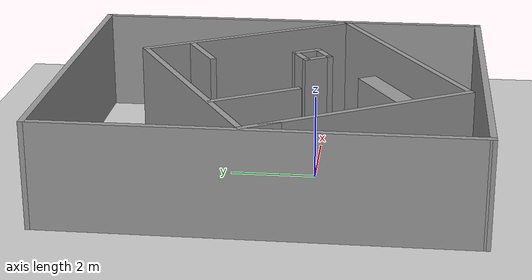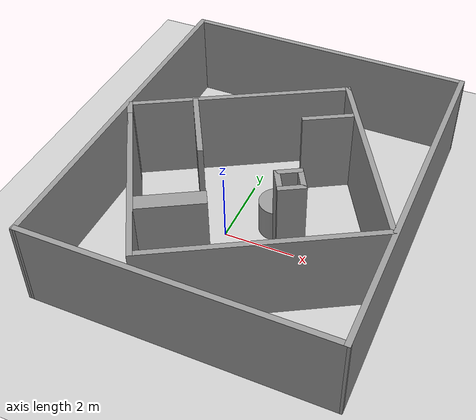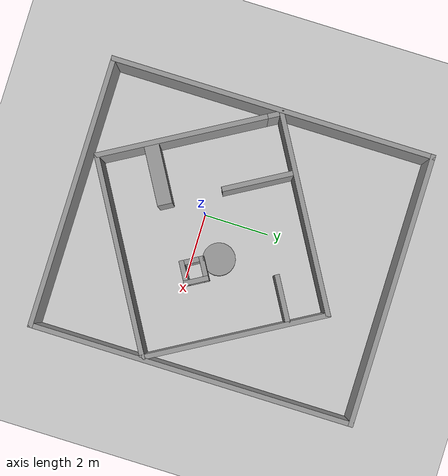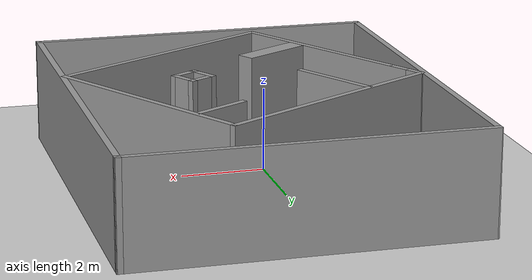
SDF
<sdf version="1.7">
 <world name="default">
  <light name="sun" type="directional">
   <pose>0 0 10 0 -0 0</pose>
   <diffuse>0.8 0.8 0.8 1</diffuse>
   <specular>0.2 0.2 0.2 1</specular>
   <attenuation>
    <range>1000</range>
    <constant>0.9</constant>
    <linear>0.01</linear>
    <quadratic>0.001</quadratic>
   </attenuation>
   <direction>-0.5 0.1 -0.9</direction>
   <spot><inner_angle>0</inner_angle><outer_angle>0</outer_angle><falloff>0</falloff></spot>
  </light>
  <model name="ground_plane">
   <static>1</static>
   <link name="link">
    <collision name="collision">
     <geometry><plane><normal>0 0 1</normal><size>100 100</size></plane></geometry>
     <surface>
      <contact><collide_bitmask>65535</collide_bitmask></contact>
      <friction><ode><mu>100</mu><mu2>50</mu2></ode></friction>
     </surface>
    </collision>
    <visual name="visual">
     <cast_shadows>0</cast_shadows>
     <geometry><plane><normal>0 0 1</normal><size>100 100</size></plane></geometry>
     <material>
      <script><uri>file://media/materials/scripts/gazebo.material</uri><name>Gazebo/Grey</name></script>
     </material>
    </visual>
   </link>
  </model>
  <gravity>0 0 -9.8</gravity>
  <magnetic_field>6e-06 2.3e-05 -4.2e-05</magnetic_field>
  <atmosphere type="adiabatic"/>
  <physics type="ode">
   <max_step_size>0.001</max_step_size>
   <real_time_factor>1</real_time_factor>
   <real_time_update_rate>1000</real_time_update_rate>
  </physics>
  <scene><ambient>0.4 0.4 0.4 1</ambient><background>0.7 0.7 0.7 1</background><shadows>1</shadows></scene>
  <spherical_coordinates>
   <surface_model>EARTH_WGS84</surface_model>
   <latitude_deg>0</latitude_deg>
   <longitude_deg>0</longitude_deg>
   <elevation>0</elevation>
   <heading_deg>0</heading_deg>
  </spherical_coordinates>
  <model name="Untitled">
   <pose>0.581 1.03 0 0 -0 0</pose>
   <link name="Wall_0">
    <collision name="Wall_0_Collision">
     <geometry><box><size>8.37001 0.15 2.5</size></box></geometry>
     <pose>0 0 1.25 0 -0 0</pose>
    </collision>
    <visual name="Wall_0_Visual">
     <pose>0 0 1.25 0 -0 0</pose>
     <geometry><box><size>8.37001 0.15 2.5</size></box></geometry>
     <material>
      <script><uri>file://media/materials/scripts/gazebo.material</uri><name>Gazebo/Grey</name></script>
      <ambient>1 1 1 1</ambient>
     </material>
     <meta><layer>0</layer></meta>
    </visual>
    <pose>0.001 4.925 0 0 -0 3.14159</pose>
   </link>
   <link name="Wall_10">
    <collision name="Wall_10_Collision">
     <geometry><box><size>5.25 0.15 2.5</size></box></geometry>
     <pose>0 0 1.25 0 -0 0</pose>
    </collision>
    <visual name="Wall_10_Visual">
     <pose>0 0 1.25 0 -0 0</pose>
     <geometry><box><size>5.25 0.15 2.5</size></box></geometry>
     <material>
      <script><uri>file://media/materials/scripts/gazebo.material</uri><name>Gazebo/Grey</name></script>
      <ambient>1 1 1 1</ambient>
     </material>
     <meta><layer>0</layer></meta>
    </visual>
    <pose>-2.50955 -2.34914 0 0 -0 -1.0472</pose>
   </link>
   <link name="Wall_11">
    <collision name="Wall_11_Collision">
     <geometry><box><size>6.25 0.15 2.5</size></box></geometry>
     <pose>0 0 1.25 0 -0 0</pose>
    </collision>
    <visual name="Wall_11_Visual">
     <pose>0 0 1.25 0 -0 0</pose>
     <geometry><box><size>6.25 0.15 2.5</size></box></geometry>
     <material>
      <script><uri>file://media/materials/scripts/gazebo.material</uri><name>Gazebo/Grey</name></script>
      <ambient>1 1 1 1</ambient>
     </material>
     <meta><layer>0</layer></meta>
    </visual>
    <pose>1.40683 -3.03251 0 0 -0 0.523599</pose>
   </link>
   <link name="Wall_12">
    <collision name="Wall_12_Collision">
     <geometry><box><size>5.75 0.15 2.5</size></box></geometry>
     <pose>0 0 1.25 0 -0 0</pose>
    </collision>
    <visual name="Wall_12_Visual">
     <pose>0 0 1.25 0 -0 0</pose>
     <geometry><box><size>5.75 0.15 2.5</size></box></geometry>
     <material>
      <script><uri>file://media/materials/scripts/gazebo.material</uri><name>Gazebo/Grey</name></script>
      <ambient>1 1 1 1</ambient>
     </material>
     <meta><layer>0</layer></meta>
    </visual>
    <pose>2.64821 0.917366 0 0 -0 2.0944</pose>
   </link>
   <link name="Wall_13">
    <collision name="Wall_13_Collision">
     <geometry><box><size>6.25 0.15 2.5</size></box></geometry>
     <pose>0 0 1.25 0 -0 0</pose>
    </collision>
    <visual name="Wall_13_Visual">
     <pose>0 0 1.25 0 -0 0</pose>
     <geometry><box><size>6.25 0.15 2.5</size></box></geometry>
     <material>
      <script><uri>file://media/materials/scripts/gazebo.material</uri><name>Gazebo/Grey</name></script>
      <ambient>1 1 1 1</ambient>
     </material>
     <meta><layer>0</layer></meta>
    </visual>
    <pose>-1.39317 1.81724 0 0 -0 -2.61799</pose>
   </link>
   <link name="Wall_14">
    <collision name="Wall_14_Collision">
     <geometry><box><size>1 0.15 2.5</size></box></geometry>
     <pose>0 0 1.25 0 -0 0</pose>
    </collision>
    <visual name="Wall_14_Visual">
     <pose>0 0 1.25 0 -0 0</pose>
     <geometry><box><size>1 0.15 2.5</size></box></geometry>
     <material>
      <script><uri>file://media/materials/scripts/gazebo.material</uri><name>Gazebo/Grey</name></script>
      <ambient>1 1 1 1</ambient>
     </material>
     <meta><layer>0</layer></meta>
    </visual>
    <pose>-3.82205 -0.075824 0 0 -0 -1.0472</pose>
   </link>
   <link name="Wall_16">
    <collision name="Wall_16_Collision">
     <geometry><box><size>1.79988 0.45 2.5</size></box></geometry>
     <pose>0 0 1.25 0 -0 0</pose>
    </collision>
    <visual name="Wall_16_Visual">
     <pose>0 0 1.25 0 -0 0</pose>
     <geometry><box><size>1.79988 0.45 2.5</size></box></geometry>
     <material>
      <script><uri>file://media/materials/scripts/gazebo.material</uri><name>Gazebo/Grey</name></script>
      <ambient>1 1 1 1</ambient>
     </material>
     <meta><layer>0</layer></meta>
    </visual>
    <pose>-1.21859 -2.6528 0 0 -0 0.523649</pose>
   </link>
   <link name="Wall_19">
    <collision name="Wall_19_Collision">
     <geometry><box><size>2.25 0.15 2.5</size></box></geometry>
     <pose>0 0 1.25 0 -0 0</pose>
    </collision>
    <visual name="Wall_19_Visual">
     <pose>0 0 1.25 0 -0 0</pose>
     <geometry><box><size>2.25 0.15 2.5</size></box></geometry>
     <material>
      <script><uri>file://media/materials/scripts/gazebo.material</uri><name>Gazebo/Grey</name></script>
      <ambient>1 1 1 1</ambient>
     </material>
     <meta><layer>0</layer></meta>
    </visual>
    <pose>-1.92542 0.241138 0 0 -0 -1.0472</pose>
   </link>
   <link name="Wall_2">
    <collision name="Wall_2_Collision">
     <geometry><box><size>10 0.15 2.5</size></box></geometry>
     <pose>0 0 1.25 0 -0 0</pose>
    </collision>
    <visual name="Wall_2_Visual">
     <pose>0 0 1.25 0 -0 0</pose>
     <geometry><box><size>10 0.15 2.5</size></box></geometry>
     <material>
      <script><uri>file://media/materials/scripts/gazebo.material</uri><name>Gazebo/Grey</name></script>
      <ambient>1 1 1 1</ambient>
     </material>
     <meta><layer>0</layer></meta>
    </visual>
    <pose>4.11 0 0 0 -0 -1.571</pose>
   </link>
   <link name="Wall_26">
    <collision name="Wall_26_Collision">
     <geometry><box><size>1.5 0.15 2.5</size></box></geometry>
     <pose>0 0 1.25 0 -0 0</pose>
    </collision>
    <visual name="Wall_26_Visual">
     <pose>0 0 1.25 0 -0 0</pose>
     <geometry><box><size>1.5 0.15 2.5</size></box></geometry>
     <material>
      <script><uri>file://media/materials/scripts/gazebo.material</uri><name>Gazebo/Grey</name></script>
      <ambient>1 1 1 1</ambient>
     </material>
     <meta><layer>0</layer></meta>
    </visual>
    <pose>1.20681 1.92908 0 0 -0 -2.61799</pose>
   </link>
   <link name="Wall_28">
    <collision name="Wall_28_Collision">
     <geometry><box><size>0.75 0.15 2.5</size></box></geometry>
     <pose>0 0 1.25 0 -0 0</pose>
    </collision>
    <visual name="Wall_28_Visual">
     <pose>0 0 1.25 0 -0 0</pose>
     <geometry><box><size>0.75 0.15 2.5</size></box></geometry>
     <material>
      <script><uri>file://media/materials/scripts/gazebo.material</uri><name>Gazebo/Grey</name></script>
      <ambient>1 1 1 1</ambient>
     </material>
     <meta><layer>0</layer></meta>
    </visual>
    <pose>1.01959 -0.54958 0 0 -0 0.523599</pose>
   </link>
   <link name="Wall_29">
    <collision name="Wall_29_Collision">
     <geometry><box><size>0.75 0.15 2.5</size></box></geometry>
     <pose>0 0 1.25 0 -0 0</pose>
    </collision>
    <visual name="Wall_29_Visual">
     <pose>0 0 1.25 0 -0 0</pose>
     <geometry><box><size>0.75 0.15 2.5</size></box></geometry>
     <material>
      <script><uri>file://media/materials/scripts/gazebo.material</uri><name>Gazebo/Grey</name></script>
      <ambient>1 1 1 1</ambient>
     </material>
     <meta><layer>0</layer></meta>
    </visual>
    <pose>1.42939 -0.659388 0 0 -0 -1.0472</pose>
   </link>
   <link name="Wall_30">
    <collision name="Wall_30_Collision">
     <geometry><box><size>0.75 0.15 2.5</size></box></geometry>
     <pose>0 0 1.25 0 -0 0</pose>
    </collision>
    <visual name="Wall_30_Visual">
     <pose>0 0 1.25 0 -0 0</pose>
     <geometry><box><size>0.75 0.15 2.5</size></box></geometry>
     <material>
      <script><uri>file://media/materials/scripts/gazebo.material</uri><name>Gazebo/Grey</name></script>
      <ambient>1 1 1 1</ambient>
     </material>
     <meta><layer>0</layer></meta>
    </visual>
    <pose>1.31959 -1.0692 0 0 -0 -2.61799</pose>
   </link>
   <link name="Wall_31">
    <collision name="Wall_31_Collision">
     <geometry><box><size>0.75 0.15 2.5</size></box></geometry>
     <pose>0 0 1.25 0 -0 0</pose>
    </collision>
    <visual name="Wall_31_Visual">
     <pose>0 0 1.25 0 -0 0</pose>
     <geometry><box><size>0.75 0.15 2.5</size></box></geometry>
     <material>
      <script><uri>file://media/materials/scripts/gazebo.material</uri><name>Gazebo/Grey</name></script>
      <ambient>1 1 1 1</ambient>
     </material>
     <meta><layer>0</layer></meta>
    </visual>
    <pose>0.909779 -0.959388 0 0 -0 2.0944</pose>
   </link>
   <link name="Wall_4">
    <collision name="Wall_4_Collision">
     <geometry><box><size>10 0.15 2.5</size></box></geometry>
     <pose>0 0 1.25 0 -0 0</pose>
    </collision>
    <visual name="Wall_4_Visual">
     <pose>0 0 1.25 0 -0 0</pose>
     <geometry><box><size>10 0.15 2.5</size></box></geometry>
     <material>
      <script><uri>file://media/materials/scripts/gazebo.material</uri><name>Gazebo/Grey</name></script>
      <ambient>1 1 1 1</ambient>
     </material>
     <meta><layer>0</layer></meta>
    </visual>
    <pose>-4.11 0 0 0 -0 -1.571</pose>
   </link>
   <link name="Wall_5">
    <collision name="Wall_5_Collision">
     <geometry><box><size>8.37 0.15 2.5</size></box></geometry>
     <pose>0 0 1.25 0 -0 0</pose>
    </collision>
    <visual name="Wall_5_Visual">
     <pose>0 0 1.25 0 -0 0</pose>
     <geometry><box><size>8.37 0.15 2.5</size></box></geometry>
     <material>
      <script><uri>file://media/materials/scripts/gazebo.material</uri><name>Gazebo/Grey</name></script>
      <ambient>1 1 1 1</ambient>
     </material>
     <meta><layer>0</layer></meta>
    </visual>
    <pose>-0.001 -4.925 0 0 -0 0</pose>
   </link>
   <static>1</static>
  </model>
  <model name="unit_cylinder">
   <pose>1.17803 0.805795 0.499997 3e-06 4e-06 -0</pose>
   <link name="link">
    <inertial>
     <mass>1</mass>
     <inertia><ixx>0.145833</ixx><ixy>0</ixy><ixz>0</ixz><iyy>0.145833</iyy><iyz>0</iyz><izz>0.125</izz></inertia>
    </inertial>
    <collision name="collision">
     <geometry><cylinder><radius>0.5</radius><length>1</length></cylinder></geometry>
    </collision>
    <visual name="visual">
     <geometry><cylinder><radius>0.5</radius><length>1</length></cylinder></geometry>
     <material>
      <script><name>Gazebo/Grey</name><uri>file://media/materials/scripts/gazebo.material</uri></script>
     </material>
    </visual>
   </link>
  </model>
 </world>
</sdf>
